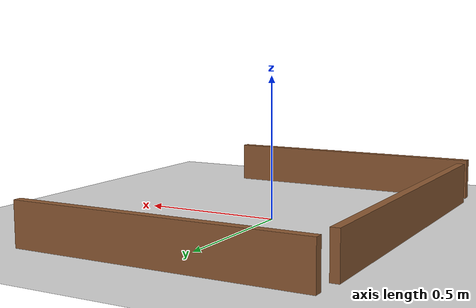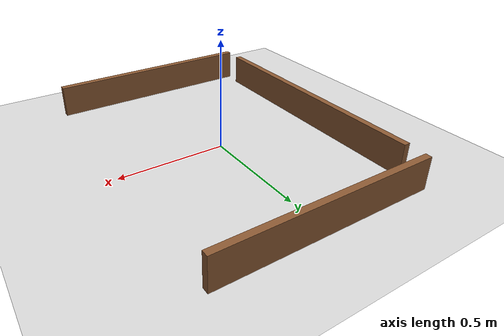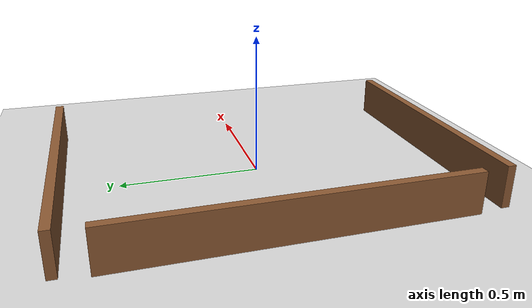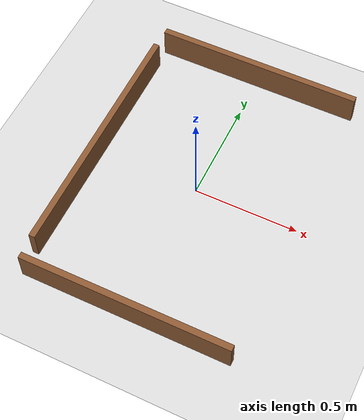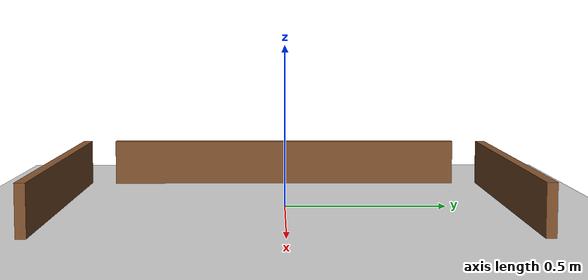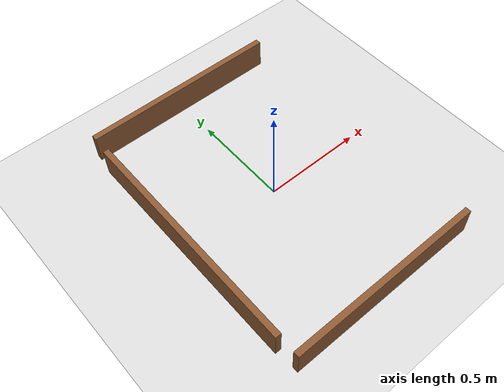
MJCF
<mujoco model="practice_walls">
  <compiler angle="degree" coordinate="local"/>
  <option timestep="0.001" iterations="20" solver="Newton" gravity="0 0 -9.81"/>

  <visual>
    <headlight diffuse="0.6 0.6 0.6" ambient="0.5 0.5 0.5" specular="0 0 0"/>
  </visual>

  <worldbody>
    <light pos="0 0 1.5" dir="0 0 -1"/>

    <!-- Light grey floor — 2 × 2 m. -->
    <geom name="floor" type="plane" size="1.0 1.0 0.05"
          rgba="0.85 0.85 0.85 1" friction="0.9 0.02 0.0001"/>

    <!-- Three obstacle walls. 30 mm thick, 150 mm tall, brown.
         Tall enough to be seen by the chassis_dist sensor at any
         realistic chassis-tilt angle. -->
    <geom name="wall_back" type="box"
          pos="-0.50 0.00 0.075" size="0.015 0.60 0.075"
          rgba="0.55 0.35 0.20 1"/>
    <geom name="wall_left" type="box"
          pos="0.00 0.70 0.075" size="0.50 0.015 0.075"
          rgba="0.55 0.35 0.20 1"/>
    <geom name="wall_right" type="box"
          pos="0.00 -0.70 0.075" size="0.50 0.015 0.075"
          rgba="0.55 0.35 0.20 1"/>
  </worldbody>
</mujoco>
